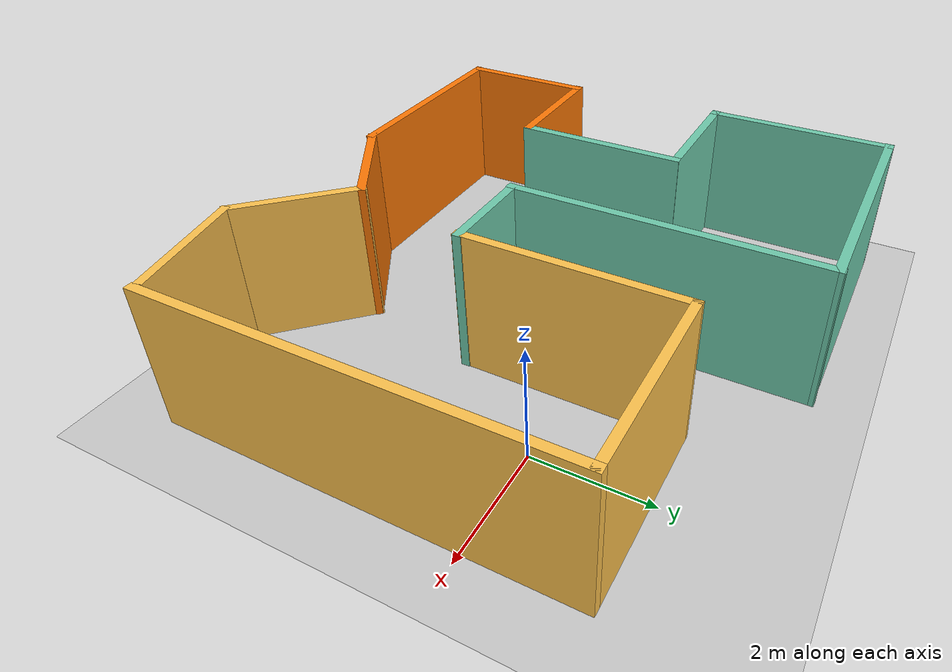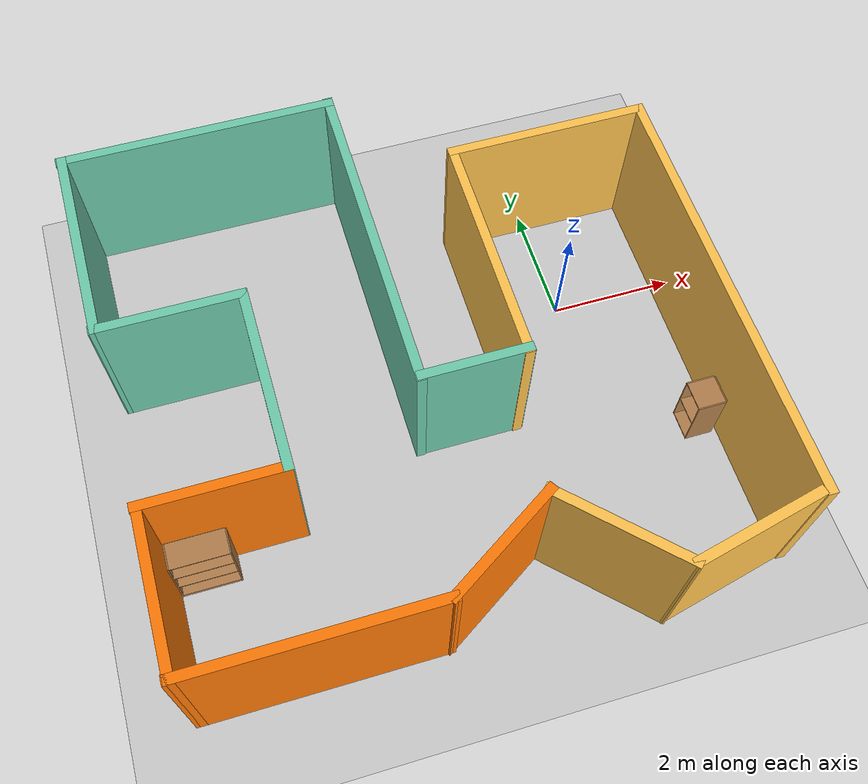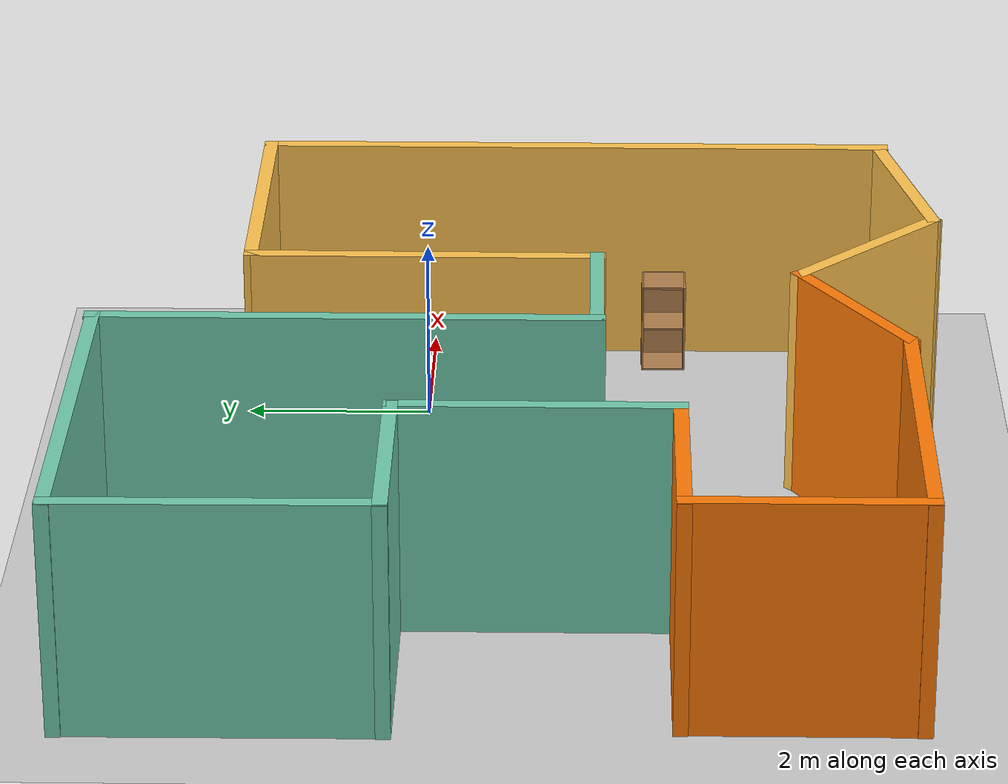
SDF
<sdf version="1.6">
 <world name="default">
  <light name="sun" type="directional">
   <pose>0 0 10 0 -0 0</pose>
   <diffuse>0.8 0.8 0.8 1</diffuse>
   <specular>0.2 0.2 0.2 1</specular>
   <attenuation>
    <range>1000</range>
    <constant>0.9</constant>
    <linear>0.01</linear>
    <quadratic>0.001</quadratic>
   </attenuation>
   <direction>-0.5 0.1 -0.9</direction>
  </light>
  <model name="ground_plane">
   <static>1</static>
   <link name="link">
    <collision name="collision">
     <geometry><plane><normal>0 0 1</normal><size>100 100</size></plane></geometry>
     <surface><friction><ode><mu>100</mu><mu2>50</mu2></ode></friction></surface>
    </collision>
    <visual name="visual">
     <cast_shadows>0</cast_shadows>
     <geometry><plane><normal>0 0 1</normal><size>100 100</size></plane></geometry>
     <material>
      <script><uri>file://media/materials/scripts/gazebo.material</uri><name>Gazebo/Grey</name></script>
     </material>
    </visual>
   </link>
  </model>
  <gravity>0 0 -9.8</gravity>
  <magnetic_field>6e-06 2.3e-05 -4.2e-05</magnetic_field>
  <atmosphere type="adiabatic"/>
  <physics name="default_physics" default="0" type="ode">
   <max_step_size>0.001</max_step_size>
   <real_time_factor>1</real_time_factor>
   <real_time_update_rate>1000</real_time_update_rate>
  </physics>
  <scene><ambient>0.4 0.4 0.4 1</ambient><background>0.7 0.7 0.7 1</background><shadows>1</shadows></scene>
  <spherical_coordinates>
   <surface_model>EARTH_WGS84</surface_model>
   <latitude_deg>0</latitude_deg>
   <longitude_deg>0</longitude_deg>
   <elevation>0</elevation>
   <heading_deg>0</heading_deg>
  </spherical_coordinates>
  <model name="mansion">
   <pose>-2.73914 -1.06913 0 0 -0 0</pose>
   <link name="Wall_50">
    <collision name="Wall_50_Collision">
     <geometry><box><size>7 0.15 2.5</size></box></geometry>
     <pose>0 0 1.25 0 -0 0</pose>
    </collision>
    <visual name="Wall_50_Visual">
     <pose>0 0 1.25 0 -0 0</pose>
     <geometry><box><size>7 0.15 2.5</size></box></geometry>
     <material>
      <script><uri>file://media/materials/scripts/gazebo.material</uri><name>Gazebo/Grey</name></script>
      <ambient>1 0.764706 0.305882 1</ambient>
     </material>
     <meta><layer>0</layer></meta>
    </visual>
    <pose>4.50754 -0.528645 0 0 -0 1.5708</pose>
   </link>
   <link name="Wall_52">
    <collision name="Wall_52_Collision">
     <geometry><box><size>3.25 0.15 2.5</size></box></geometry>
     <pose>0 0 1.25 0 -0 0</pose>
    </collision>
    <visual name="Wall_52_Visual">
     <pose>0 0 1.25 0 -0 0</pose>
     <geometry><box><size>3.25 0.15 2.5</size></box></geometry>
     <material>
      <script><uri>file://media/materials/scripts/gazebo.material</uri><name>Gazebo/Grey</name></script>
      <ambient>1 0.764706 0.305882 1</ambient>
     </material>
     <meta><layer>0</layer></meta>
    </visual>
    <pose>2.94233 2.89635 0 0 -0 3.14159</pose>
   </link>
   <link name="Wall_53">
    <collision name="Wall_53_Collision">
     <geometry><box><size>3.83651 0.15 2.5</size></box></geometry>
     <pose>0 0 1.25 0 -0 0</pose>
    </collision>
    <visual name="Wall_53_Visual">
     <pose>0 0 1.25 0 -0 0</pose>
     <geometry><box><size>3.83651 0.15 2.5</size></box></geometry>
     <material>
      <script><uri>file://media/materials/scripts/gazebo.material</uri><name>Gazebo/Grey</name></script>
      <ambient>1 0.764706 0.305882 1</ambient>
     </material>
     <meta><layer>0</layer></meta>
    </visual>
    <pose>1.38472 1.05311 0 0 0 -1.57492</pose>
   </link>
   <link name="Wall_54">
    <collision name="Wall_54_Collision">
     <geometry><box><size>1.75 0.15 2.5</size></box></geometry>
     <pose>0 0 1.25 0 -0 0</pose>
    </collision>
    <visual name="Wall_54_Visual">
     <pose>0 0 1.25 0 -0 0</pose>
     <geometry><box><size>1.75 0.15 2.5</size></box></geometry>
     <material>
      <script><uri>file://media/materials/scripts/gazebo.material</uri><name>Gazebo/Grey</name></script>
      <ambient>0.435294 0.796078 0.67451 1</ambient>
     </material>
     <meta><layer>0</layer></meta>
    </visual>
    <pose>0.59233 -0.774918 0 0 -0 3.14159</pose>
   </link>
   <link name="Wall_55">
    <collision name="Wall_55_Collision">
     <geometry><box><size>5.35736 0.15 2.5</size></box></geometry>
     <pose>0 0 1.25 0 -0 0</pose>
    </collision>
    <visual name="Wall_55_Visual">
     <pose>0 0 1.25 0 -0 0</pose>
     <geometry><box><size>5.35736 0.15 2.5</size></box></geometry>
     <material>
      <script><uri>file://media/materials/scripts/gazebo.material</uri><name>Gazebo/Grey</name></script>
      <ambient>0.435294 0.796078 0.67451 1</ambient>
     </material>
     <meta><layer>0</layer></meta>
    </visual>
    <pose>-0.222879 1.81355 0 0 -0 1.5708</pose>
   </link>
   <link name="Wall_56">
    <collision name="Wall_56_Collision">
     <geometry><box><size>4.43442 0.15 2.5</size></box></geometry>
     <pose>0 0 1.25 0 -0 0</pose>
    </collision>
    <visual name="Wall_56_Visual">
     <pose>0 0 1.25 0 -0 0</pose>
     <geometry><box><size>4.43442 0.15 2.5</size></box></geometry>
     <material>
      <script><uri>file://media/materials/scripts/gazebo.material</uri><name>Gazebo/Grey</name></script>
      <ambient>0.435294 0.796078 0.67451 1</ambient>
     </material>
     <meta><layer>0</layer></meta>
    </visual>
    <pose>-2.36508 4.40963 0 0 -0 3.13804</pose>
   </link>
   <link name="Wall_57">
    <collision name="Wall_57_Collision">
     <geometry><box><size>3.31654 0.15 2.5</size></box></geometry>
     <pose>0 0 1.25 0 -0 0</pose>
    </collision>
    <visual name="Wall_57_Visual">
     <pose>0 0 1.25 0 -0 0</pose>
     <geometry><box><size>3.31654 0.15 2.5</size></box></geometry>
     <material>
      <script><uri>file://media/materials/scripts/gazebo.material</uri><name>Gazebo/Grey</name></script>
      <ambient>0.435294 0.796078 0.67451 1</ambient>
     </material>
     <meta><layer>0</layer></meta>
    </visual>
    <pose>-4.48446 2.83398 0 0 0 -1.56599</pose>
   </link>
   <link name="Wall_58">
    <collision name="Wall_58_Collision">
     <geometry><box><size>2.31938 0.15 2.5</size></box></geometry>
     <pose>0 0 1.25 0 -0 0</pose>
    </collision>
    <visual name="Wall_58_Visual">
     <pose>0 0 1.25 0 -0 0</pose>
     <geometry><box><size>2.31938 0.15 2.5</size></box></geometry>
     <material>
      <script><uri>file://media/materials/scripts/gazebo.material</uri><name>Gazebo/Grey</name></script>
      <ambient>0.435294 0.796078 0.67451 1</ambient>
     </material>
     <meta><layer>0</layer></meta>
    </visual>
    <pose>-3.40737 1.25073 0 0 -0 0</pose>
   </link>
   <link name="Wall_59">
    <collision name="Wall_59_Collision">
     <geometry><box><size>3 0.15 2.5</size></box></geometry>
     <pose>0 0 1.25 0 -0 0</pose>
    </collision>
    <visual name="Wall_59_Visual">
     <pose>0 0 1.25 0 -0 0</pose>
     <geometry><box><size>3 0.15 2.5</size></box></geometry>
     <material>
      <script><uri>file://media/materials/scripts/gazebo.material</uri><name>Gazebo/Grey</name></script>
      <ambient>0.435294 0.796078 0.67451 1</ambient>
     </material>
     <meta><layer>0</layer></meta>
    </visual>
    <pose>-2.30747 -0.174271 0 0 0 -1.5708</pose>
   </link>
   <link name="Wall_60">
    <collision name="Wall_60_Collision">
     <geometry><box><size>2.21292 0.15 2.5</size></box></geometry>
     <pose>0 0 1.25 0 -0 0</pose>
    </collision>
    <visual name="Wall_60_Visual">
     <pose>0 0 1.25 0 -0 0</pose>
     <geometry><box><size>2.21292 0.15 2.5</size></box></geometry>
     <material>
      <script><uri>file://media/materials/scripts/gazebo.material</uri><name>Gazebo/Grey</name></script>
      <ambient>0.996078 0.47451 0.0196078 1</ambient>
     </material>
     <meta><layer>0</layer></meta>
    </visual>
    <pose>-3.35414 -1.59927 0 0 -0 3.14159</pose>
   </link>
   <link name="Wall_61">
    <collision name="Wall_61_Collision">
     <geometry><box><size>2.5 0.15 2.5</size></box></geometry>
     <pose>0 0 1.25 0 -0 0</pose>
    </collision>
    <visual name="Wall_61_Visual">
     <pose>0 0 1.25 0 -0 0</pose>
     <geometry><box><size>2.5 0.15 2.5</size></box></geometry>
     <material>
      <script><uri>file://media/materials/scripts/gazebo.material</uri><name>Gazebo/Grey</name></script>
      <ambient>0.996078 0.47451 0.0196078 1</ambient>
     </material>
     <meta><layer>0</layer></meta>
    </visual>
    <pose>-4.37039 -2.77427 0 0 0 -1.5708</pose>
   </link>
   <link name="Wall_62">
    <collision name="Wall_62_Collision">
     <geometry><box><size>3.82793 0.15 2.5</size></box></geometry>
     <pose>0 0 1.25 0 -0 0</pose>
    </collision>
    <visual name="Wall_62_Visual">
     <pose>0 0 1.25 0 -0 0</pose>
     <geometry><box><size>3.82793 0.15 2.5</size></box></geometry>
     <material>
      <script><uri>file://media/materials/scripts/gazebo.material</uri><name>Gazebo/Grey</name></script>
      <ambient>0.996078 0.47451 0.0196078 1</ambient>
     </material>
     <meta><layer>0</layer></meta>
    </visual>
    <pose>-2.54664 -3.94927 0 0 -0 0</pose>
   </link>
   <link name="Wall_63">
    <collision name="Wall_63_Collision">
     <geometry><box><size>2.11281 0.15 2.5</size></box></geometry>
     <pose>0 0 1.25 0 -0 0</pose>
    </collision>
    <visual name="Wall_63_Visual">
     <pose>0 0 1.25 0 -0 0</pose>
     <geometry><box><size>2.11281 0.15 2.5</size></box></geometry>
     <material>
      <script><uri>file://media/materials/scripts/gazebo.material</uri><name>Gazebo/Grey</name></script>
      <ambient>0.996078 0.47451 0.0196078 1</ambient>
     </material>
     <meta><layer>0</layer></meta>
    </visual>
    <pose>0.122242 -3.42543 0 0 -0 0.563042</pose>
   </link>
   <link name="Wall_64">
    <collision name="Wall_64_Collision">
     <geometry><box><size>2.25 0.15 2.5</size></box></geometry>
     <pose>0 0 1.25 0 -0 0</pose>
    </collision>
    <visual name="Wall_64_Visual">
     <pose>0 0 1.25 0 -0 0</pose>
     <geometry><box><size>2.25 0.15 2.5</size></box></geometry>
     <material>
      <script><uri>file://media/materials/scripts/gazebo.material</uri><name>Gazebo/Grey</name></script>
      <ambient>1 0.764706 0.305882 1</ambient>
     </material>
     <meta><layer>0</layer></meta>
    </visual>
    <pose>1.67713 -3.64406 0 0 0 -0.785398</pose>
   </link>
   <link name="Wall_65">
    <collision name="Wall_65_Collision">
     <geometry><box><size>2.12413 0.15 2.5</size></box></geometry>
     <pose>0 0 1.25 0 -0 0</pose>
    </collision>
    <visual name="Wall_65_Visual">
     <pose>0 0 1.25 0 -0 0</pose>
     <geometry><box><size>2.12413 0.15 2.5</size></box></geometry>
     <material>
      <script><uri>file://media/materials/scripts/gazebo.material</uri><name>Gazebo/Grey</name></script>
      <ambient>1 0.764706 0.305882 1</ambient>
     </material>
     <meta><layer>0</layer></meta>
    </visual>
    <pose>3.39963 -4.1679 0 0 -0 0.223343</pose>
   </link>
   <static>1</static>
  </model>
  <model name="bookshelf">
   <static>1</static>
   <link name="link">
    <inertial><mass>1</mass></inertial>
    <collision name="back">
     <pose>0 0.005 0.6 0 -0 0</pose>
     <geometry><box><size>0.9 0.01 1.2</size></box></geometry>
    </collision>
    <visual name="visual1">
     <pose>0 0.005 0.6 0 -0 0</pose>
     <geometry><box><size>0.9 0.01 1.2</size></box></geometry>
     <material>
      <script><uri>file://media/materials/scripts/gazebo.material</uri><name>Gazebo/Wood</name></script>
     </material>
    </visual>
    <collision name="left_side">
     <pose>0.45 -0.195 0.6 0 -0 0</pose>
     <geometry><box><size>0.02 0.4 1.2</size></box></geometry>
    </collision>
    <visual name="visual2">
     <pose>0.45 -0.195 0.6 0 -0 0</pose>
     <geometry><box><size>0.02 0.4 1.2</size></box></geometry>
     <material>
      <script><uri>file://media/materials/scripts/gazebo.material</uri><name>Gazebo/Wood</name></script>
     </material>
    </visual>
    <collision name="right_side">
     <pose>-0.45 -0.195 0.6 0 -0 0</pose>
     <geometry><box><size>0.02 0.4 1.2</size></box></geometry>
    </collision>
    <visual name="visual3">
     <pose>-0.45 -0.195 0.6 0 -0 0</pose>
     <geometry><box><size>0.02 0.4 1.2</size></box></geometry>
     <material>
      <script><uri>file://media/materials/scripts/gazebo.material</uri><name>Gazebo/Wood</name></script>
     </material>
    </visual>
    <collision name="bottom">
     <pose>0 -0.195 0.03 0 -0 0</pose>
     <geometry><box><size>0.88 0.4 0.06</size></box></geometry>
    </collision>
    <visual name="visual4">
     <pose>0 -0.195 0.03 0 -0 0</pose>
     <geometry><box><size>0.88 0.4 0.06</size></box></geometry>
     <material>
      <script><uri>file://media/materials/scripts/gazebo.material</uri><name>Gazebo/Wood</name></script>
     </material>
    </visual>
    <collision name="top">
     <pose>0 -0.195 1.19 0 -0 0</pose>
     <geometry><box><size>0.88 0.4 0.02</size></box></geometry>
    </collision>
    <visual name="visual5">
     <pose>0 -0.195 1.19 0 -0 0</pose>
     <geometry><box><size>0.88 0.4 0.02</size></box></geometry>
     <material>
      <script><uri>file://media/materials/scripts/gazebo.material</uri><name>Gazebo/Wood</name></script>
     </material>
    </visual>
    <collision name="low_shelf">
     <pose>0 -0.195 0.43 0 -0 0</pose>
     <geometry><box><size>0.88 0.4 0.02</size></box></geometry>
    </collision>
    <visual name="visual6">
     <pose>0 -0.195 0.43 0 -0 0</pose>
     <geometry><box><size>0.88 0.4 0.02</size></box></geometry>
     <material>
      <script><uri>file://media/materials/scripts/gazebo.material</uri><name>Gazebo/Wood</name></script>
     </material>
    </visual>
    <collision name="high_shelf">
     <pose>0 -0.195 0.8 0 -0 0</pose>
     <geometry><box><size>0.88 0.4 0.02</size></box></geometry>
    </collision>
    <visual name="visual7">
     <pose>0 -0.195 0.8 0 -0 0</pose>
     <geometry><box><size>0.88 0.4 0.02</size></box></geometry>
     <material>
      <script><uri>file://media/materials/scripts/gazebo.material</uri><name>Gazebo/Wood</name></script>
     </material>
    </visual>
   </link>
   <pose>-6.56787 -2.75924 0 0 -0 0</pose>
  </model>
  <model name="cabinet">
   <static>1</static>
   <link name="cabinet_bottom_plate">
    <inertial>
     <pose>0 0 -1 0 -0 0</pose>
     <inertia><ixx>2.05</ixx><ixy>0</ixy><ixz>0</ixz><iyy>2.05</iyy><iyz>0</iyz><izz>2.05</izz></inertia>
     <mass>25</mass>
    </inertial>
    <collision name="cabinet_bottom_plate_geom">
     <pose>0 0 0.01 0 -0 0</pose>
     <geometry><box><size>0.45 0.45 0.02</size></box></geometry>
    </collision>
    <visual name="cabinet_bottom_plate_geom_visual">
     <pose>0 0 0.01 0 -0 0</pose>
     <geometry><box><size>0.45 0.45 0.02</size></box></geometry>
     <material>
      <script><uri>file://media/materials/scripts/gazebo.material</uri><name>Gazebo/Wood</name></script>
     </material>
    </visual>
    <collision name="cabinet_bottom_plate_geom_cabinet_back_plate">
     <pose>0.235 0 0.51 0 -0 0</pose>
     <geometry><box><size>0.02 0.45 1.02</size></box></geometry>
    </collision>
    <visual name="cabinet_bottom_plate_geom_cabinet_back_plate_visual">
     <pose>0.235 0 0.51 0 -0 0</pose>
     <geometry><box><size>0.02 0.45 1.02</size></box></geometry>
     <material>
      <script><uri>file://media/materials/scripts/gazebo.material</uri><name>Gazebo/Wood</name></script>
     </material>
    </visual>
    <collision name="cabinet_bottom_plate_geom_cabinet_left_plate">
     <pose>0 0.235 0.51 0 -0 0</pose>
     <geometry><box><size>0.45 0.02 1.02</size></box></geometry>
    </collision>
    <visual name="cabinet_bottom_plate_geom_cabinet_left_plate_visual">
     <pose>0 0.235 0.51 0 -0 0</pose>
     <geometry><box><size>0.45 0.02 1.02</size></box></geometry>
     <material>
      <script><uri>file://media/materials/scripts/gazebo.material</uri><name>Gazebo/Wood</name></script>
     </material>
    </visual>
    <collision name="cabinet_bottom_plate_geom_cabinet_middle_plate">
     <pose>0 0 0.51 0 -0 0</pose>
     <geometry><box><size>0.45 0.45 0.02</size></box></geometry>
    </collision>
    <visual name="cabinet_bottom_plate_geom_cabinet_middle_plate_visual">
     <pose>0 0 0.51 0 -0 0</pose>
     <geometry><box><size>0.45 0.45 0.02</size></box></geometry>
     <material>
      <script><uri>file://media/materials/scripts/gazebo.material</uri><name>Gazebo/Wood</name></script>
     </material>
    </visual>
    <collision name="cabinet_bottom_plate_geom_cabinet_right_plate">
     <pose>0 -0.235 0.51 0 -0 0</pose>
     <geometry><box><size>0.45 0.02 1.02</size></box></geometry>
    </collision>
    <visual name="cabinet_bottom_plate_geom_cabinet_right_plate_visual">
     <pose>0 -0.235 0.51 0 -0 0</pose>
     <geometry><box><size>0.45 0.02 1.02</size></box></geometry>
     <material>
      <script><uri>file://media/materials/scripts/gazebo.material</uri><name>Gazebo/Wood</name></script>
     </material>
    </visual>
    <collision name="cabinet_bottom_plate_geom_cabinet_top_plate">
     <pose>0 0 1.01 0 -0 0</pose>
     <geometry><box><size>0.45 0.45 0.02</size></box></geometry>
    </collision>
    <visual name="cabinet_bottom_plate_geom_cabinet_top_plate_visual">
     <pose>0 0 1.01 0 -0 0</pose>
     <geometry><box><size>0.45 0.45 0.02</size></box></geometry>
     <material>
      <script><uri>file://media/materials/scripts/gazebo.material</uri><name>Gazebo/Wood</name></script>
     </material>
    </visual>
   </link>
   <pose>1.39124 -2.60145 0 0 -0 0</pose>
  </model>
 </world>
</sdf>
